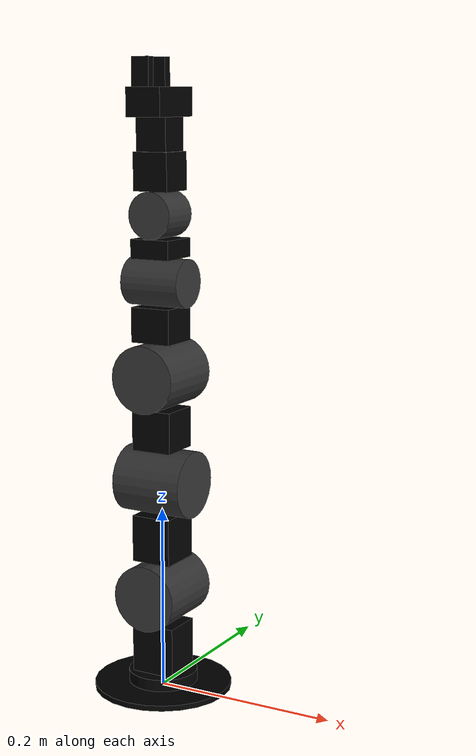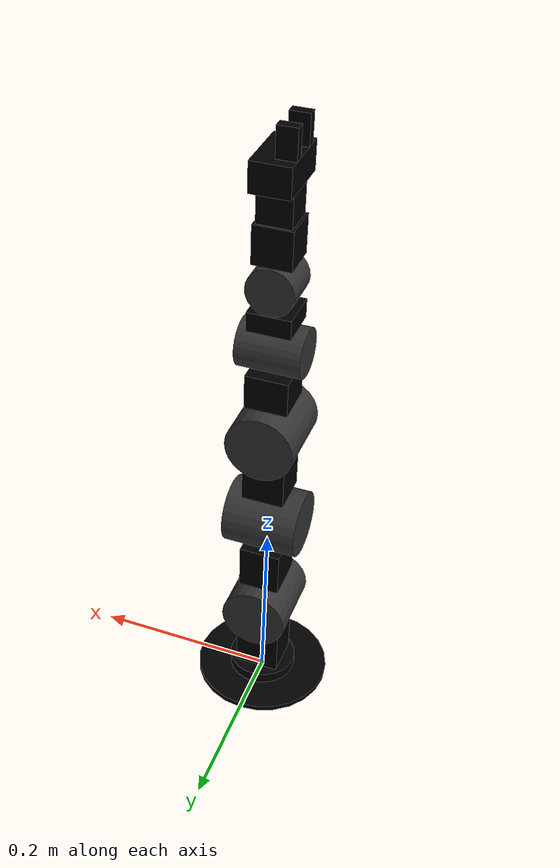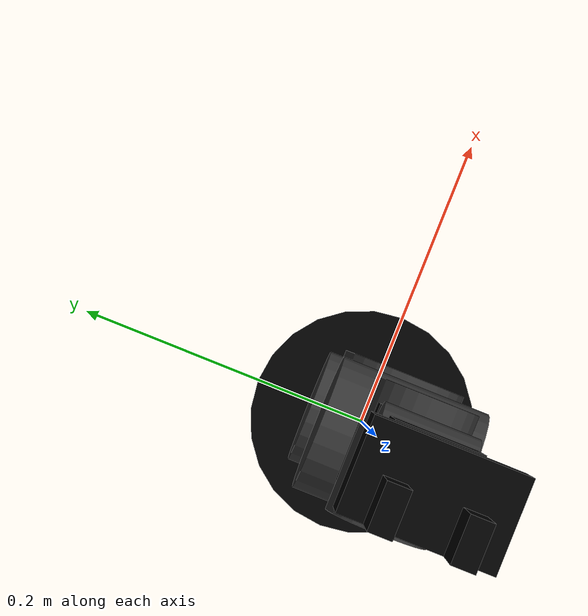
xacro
<?xml version="1.0"?>
<robot xmlns:xacro="http://ros.org/wiki/xacro" name="cyton_gamma_1500" >

  <xacro:include filename="$(find rose20_description)/cyton_gamma_1500/new/urdf/base/base.urdf.xacro" />
  <xacro:include filename="$(find rose20_description)/cyton_gamma_1500/new/urdf/arm/arm.urdf.xacro" />
  <xacro:include filename="$(find rose20_description)/cyton_gamma_1500/new/urdf/gripper/gripper.urdf.xacro" />

  <xacro:cyton_gamma_base/>
  <xacro:cyton_gamma_arm/>
  <xacro:cyton_gamma_gripper/>

</robot>

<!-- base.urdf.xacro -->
<robot xmlns:xacro="http://ros.org/wiki/xacro">

 <xacro:include filename="$(find rose20_description)/cyton_gamma_1500/new/urdf/properties/properties.urdf.xacro" />

  <xacro:macro name="cylinder_base" params="suffix radius length jointz parent">
    <link name="base_link_${suffix}">
      <visual>
        <geometry>
          <cylinder radius="${radius}" length="${length}" />
        </geometry>
        <origin xyz="0 0 0" rpy="0 0 0" />
        <material name="color_black">
         <color rgba="0 0 0 1"/>
        </material>
      </visual>
    </link>
   <joint name="base_joint_${suffix}" type="fixed" >
    <origin xyz="0 0 ${jointz}" rpy="0 0 0" />
    <parent link="${parent}" />
    <child link="base_link_${suffix}" />
   </joint>
  </xacro:macro>

  <!-- cyton_gamma_base: part 1 & 2 -->
 <xacro:macro name="cyton_gamma_base">
   <link name="world"/>

   <xacro:cylinder_base
                        suffix=    "1"
                        radius=    "${base_radius}"
                        length=    "${base_length}"
                        jointz=    "${base_length/2}"
                        parent=    "world" />

  <xacro:cylinder_base
                        suffix=     "2"
                        radius=     "${base_radius_2}"
                        length=     "${base_length_2}"
                        jointz=     "${base_length/2 + (base_length_2/2)}"
                        parent=     "base_link_1" />

 </xacro:macro>

</robot>

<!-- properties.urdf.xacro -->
<robot xmlns:xacro="http://ros.org/wiki/xacro">

  <property name="M_PI" value="3.1415926535897931"/>

  <!--Base-->
  <property name="base_length" value="0.006" />
  <property name="base_radius" value="0.075" />
  <property name="base_length_2" value="0.013" />
  <property name="base_radius_2" value="0.0375" />

  <!--Arm-->
  <!--Joint 1-->
  <property name="j1_l" value="0.0492" />
  <property name="j1_b" value="0.0445" />
  <property name="j1_h" value="0.0545" />
  <property name="j1_radius" value="0.036" />
  <property name="j1_length" value="0.08" />
  <property name="j1_lower_lim" value="-2.6" />
  <property name="j1_upper_lim" value="2.6" />
  <!--Joint 2-->
  <property name="j2_l" value="0.0445" />
  <property name="j2_b" value="0.0492" />
  <property name="j2_h" value="0.0505" />
  <property name="j2_radius" value="0.036" />
  <property name="j2_length" value="0.08" />
  <property name="j2_lower_lim" value="-1.65" />
  <property name="j2_upper_lim" value="1.65" />
  <!--Joint 3-->
  <property name="j3_l" value="0.0454" />
  <property name="j3_b" value="0.045" />
  <property name="j3_h" value="0.04385" />
  <property name="j3_radius" value="0.036" />
  <property name="j3_length" value="0.08" />
  <property name="j3_lower_lim" value="-1.60" />
  <property name="j3_upper_lim" value="1.60" />
  <!--Joint 4-->
  <property name="j4_l" value="0.045" />
  <property name="j4_b" value="0.045" />
  <property name="j4_h" value="0.037" />
  <property name="j4_radius" value="0.0255" />
  <property name="j4_length" value="0.067" />
  <property name="j4_lower_lim" value="-1.75" />
  <property name="j4_upper_lim" value="1.75" />
  <!--Joint 5-->
  <property name="j5_l" value="0.045" />
  <property name="j5_b" value="0.045" />
  <property name="j5_h" value="0.020" />
  <property name="j5_radius" value="0.0245" />
  <property name="j5_length" value="0.045" />
  <property name="j5_lower_lim" value="-1.90" />
  <property name="j5_upper_lim" value="1.90" />

  <!--Gripper-->
  <!--Part 1-->
  <property name="gr1_1" value="0.04" />
  <property name="gr1_2" value="0.035" />
  <property name="g1_lower_lim" value="-2.65" />
  <property name="g1_upper_lim" value="2.65" />
  <!--Part 2-->
  <property name="gr2_1_l" value="0.065" />
  <property name="gr2_1_b" value="0.04" />
  <property name="gr2_1_h" value="0.03" />
  <property name="gr2_2_l" value="0.01" />
  <property name="gr2_2_b" value="0.02" />
  <property name="gr2_2_h" value="0.03" />

</robot>

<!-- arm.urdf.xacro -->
<robot xmlns:xacro="http://ros.org/wiki/xacro">

 <xacro:include filename="$(find rose20_description)/cyton_gamma_1500/new/urdf/properties/properties.urdf.xacro" />

 <xacro:macro name="joint_arm" params="suffix radius length parent type_box type_cyl *size *limit_box *limit_cyl *origin_box *origin_cyl *axis_box *axis_cyl">
  <!--Part 1: box -->
  <joint name="arm_joint_box_${suffix}" type="${type_box}" >
    <parent link="${parent}" />
    <child link="arm_link_box_${suffix}" />
     <insert_block name="limit_box"/>
     <insert_block name="axis_box"/>
     <insert_block name="origin_box"/>

  </joint>
  <link name="arm_link_box_${suffix}">
    <visual>
      <material name="color_black">
        <color rgba="0 0 0 1"/>
      </material>
      <origin xyz="0 0 0" rpy="0 0 0" />
      <geometry>
         <insert_block name="size"/>
      </geometry>
    </visual>
  </link>
  <!--Part 2: cylinder -->
 <joint name="arm_joint_cyl_${suffix}" type="${type_cyl}" >
    <parent link="arm_link_box_${suffix}" />
    <child link="arm_link_cyl_${suffix}" />
    <insert_block name="limit_cyl"/>
    <insert_block name="axis_cyl"/>
    <insert_block name="origin_cyl"/>
  </joint>
  <link name="arm_link_cyl_${suffix}">
    <visual>
      <material name="grey">
        <color rgba=".2 .2 .2 1"/>
      </material>
      <origin xyz="0 0 0" rpy="0 0 0" />
      <geometry>
        <cylinder radius="${radius}" length="${length}" />
      </geometry>
    </visual>
  </link>
 </xacro:macro>

  <!-- cyton_gamma_arm: joint1 t/m joint5 -->
 <xacro:macro name="cyton_gamma_arm">
   <xacro:joint_arm
                  suffix=    "1"
                  radius=    "${j1_radius}"
                  length=    "${j1_length}"
                  parent=    "base_link_2"
                  type_box=  "revolute"
                  type_cyl=  "revolute">
                  <box size ="${j1_l} ${j1_b} ${j1_h}" />
                  <limit lower="-${M_PI}" upper="${M_PI}" effort="1000" velocity="1000"/>
                  <limit lower="${j1_lower_lim}" upper="${j1_upper_lim}" effort="1000" velocity="1000"/>
                  <origin xyz="0 0 ${(base_length_2/2) + (j1_h /2)}" rpy="0 0 0"/>
                  <origin xyz="0 0 ${(j1_h/2) + j1_radius}" rpy="${M_PI/2} 0 0"/>
                  <axis xyz="0 0 1" />
                  <axis xyz="0 0 1" />
  </xacro:joint_arm>

  <xacro:joint_arm
                  suffix=    "2"
                  radius=    "${j2_radius}"
                  length=    "${j2_length}"
                  parent=    "arm_link_cyl_1"
                  type_box=  "fixed"
                  type_cyl=  "revolute">
                  <box size ="${j2_l} ${j2_b} ${j2_h}" />
                  <limit lower="0" upper="0" effort="0" velocity="0"/>
                  <limit lower="${j2_lower_lim}" upper="${j2_upper_lim}" effort="1000" velocity="1000"/>
                  <origin xyz="0 ${j1_radius + (j2_h /2)} 0" rpy="-${M_PI/2} -${M_PI} 0"/>
                  <origin xyz="0 0 ${(j2_h/2) + j2_radius}" rpy="0 ${M_PI/2} 0"/>
                  <axis xyz="0 0 1" />
                  <axis xyz="0 0 1" />
  </xacro:joint_arm>

  <xacro:joint_arm
                  suffix=    "3"
                  radius=    "${j3_radius}"
                  length=    "${j3_length}"
                  parent=    "arm_link_cyl_2"
                  type_box=  "fixed"
                  type_cyl=  "revolute">
                  <box size ="${j3_l} ${j3_b} ${j3_h}" />
                  <limit lower="0" upper="0" effort="0" velocity="0"/>
                  <limit lower="${j3_lower_lim}" upper="${j3_upper_lim}" effort="1000" velocity="1000"/>
                  <origin xyz="-${j2_radius + (j3_h /2)} 0 0" rpy="0 -${M_PI/2} 0"/>
                  <origin xyz="0 0 ${(j3_h/2) + j3_radius}" rpy="${M_PI/2} 0 ${M_PI}"/>
                  <axis xyz="0 0 1" />
                  <axis xyz="0 0 1" />
  </xacro:joint_arm>

  <xacro:joint_arm
                  suffix=    "4"
                  radius=    "${j4_radius}"
                  length=    "${j4_length}"
                  parent=    "arm_link_cyl_3"
                  type_box=  "fixed"
                  type_cyl=  "revolute">
                  <box size ="${j4_l} ${j4_b} ${j4_h}" />
                  <limit lower="0" upper="0" effort="0" velocity="0"/>
                  <limit lower="${j4_lower_lim}" upper="${j4_upper_lim}" effort="1000" velocity="1000"/>
                  <origin xyz="0 ${j3_radius + (j4_h /2)} 0" rpy="-${M_PI/2} -${M_PI} 0"/>
                  <origin xyz="0 0 ${(j4_h/2) + j4_radius}" rpy="0 ${M_PI/2} 0"/>
                  <axis xyz="0 0 1" />
                  <axis xyz="0 0 1" />
  </xacro:joint_arm>

  <xacro:joint_arm
                  suffix=    "5"
                  radius=    "${j5_radius}"
                  length=    "${j5_length}"
                  parent=    "arm_link_cyl_4"
                  type_box=  "fixed"
                  type_cyl=  "revolute">
                  <box size ="${j5_l} ${j5_b} ${j5_h}" />
                  <limit lower="0" upper="0" effort="0" velocity="0"/>
                  <limit lower="${j5_lower_lim}" upper="${j5_upper_lim}" effort="1000" velocity="1000"/>
                  <origin xyz="-${j4_radius + (j5_h /2)} 0 0" rpy="0 -${M_PI/2} 0"/>
                  <origin xyz="0 0 ${(j5_h/2) + j5_radius}" rpy="${M_PI/2} 0 ${M_PI}"/>
                  <axis xyz="0 0 1" />
                  <axis xyz="0 0 1" />
  </xacro:joint_arm>

 </xacro:macro>

</robot>

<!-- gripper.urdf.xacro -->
<robot xmlns:xacro="http://ros.org/wiki/xacro">

 <xacro:include filename="$(find rose20_description)/cyton_gamma_1500/new/urdf/properties/properties.urdf.xacro" />

  <xacro:macro name="part_gripper" params="suffix parent type *origin *limit *size">
   <joint name="gripper_joint_${suffix}" type="${type}" >
    <parent link="${parent}" />
    <child link="gripper_link_${suffix}" />
     <insert_block name="limit"/>
    <axis xyz="0 0 1"/>
     <insert_block name="origin"/>
  </joint>
  <link name="gripper_link_${suffix}">
    <visual>
      <material name="color_black">
        <color rgba="0 0 0 1"/>
      </material>
      <origin xyz="0 0 0" rpy="0 0 0" />
      <geometry>
         <insert_block name="size"/>
      </geometry>
    </visual>
  </link>
  </xacro:macro>

  <!-- cyton_gamma_gripper: part 1 & 2 -->
  <xacro:macro name="cyton_gamma_gripper">

  <!-- Part 1 -->
  <xacro:part_gripper
                  suffix=     "1"
                  parent=     "arm_link_cyl_5"
                  type =      "revolute">
                  <origin xyz="0 ${j5_radius + (gr1_1 /2)} 0" rpy="-${M_PI/2} ${M_PI/2} 0"/>
 		              <limit lower="${g1_lower_lim}" upper="${g1_upper_lim}" effort="1000" velocity="1000"/>
                  <box size ="${gr1_1} ${gr1_1} ${gr1_1}" />
  </xacro:part_gripper>
  <xacro:part_gripper
                  suffix=     "2"
                  parent=     "gripper_link_1"
                  type =      "fixed">
                  <origin xyz="0 0 ${(gr1_1/2) + (gr1_2/2)}" rpy="0 0 0"/>
 		              <limit lower="0" upper="0" effort="0" velocity="0"/>
                  <box size ="${gr1_2} ${gr1_2} ${gr1_2}" />
  </xacro:part_gripper>
  <!-- Part 2 -->
  <xacro:part_gripper
                  suffix=     "3"
                  parent=     "gripper_link_2"
                  type =      "fixed">
                  <origin xyz="0 0 ${(gr1_2/2) + (gr2_1_h/2)}" rpy="0 0 0"/>
 		              <limit lower="0" upper="0" effort="0" velocity="0"/>
                  <box size ="${gr2_1_l} ${gr2_1_b} ${gr2_1_h}" />
  </xacro:part_gripper>

  <xacro:part_gripper
                  suffix=     "4"
                  parent=     "gripper_link_3"
                  type =      "fixed">
                  <origin xyz="${gr2_1_l /4} ${(gr2_1_b /2) - (gr2_2_b /2)} ${(gr2_1_h/2) + (gr2_2_h/2)}" rpy="0 0 0"/>
 		              <limit lower="0" upper="0" effort="0" velocity="0"/>
                  <box size ="${gr2_2_l} ${gr2_2_b} ${gr2_2_h}" />
  </xacro:part_gripper>

  <xacro:part_gripper
                  suffix=     "5"
                  parent=     "gripper_link_3"
                  type =      "fixed">
                  <origin xyz="-${gr2_1_l /4} ${(gr2_1_b /2) - (gr2_2_b /2)} ${(gr2_1_h/2) + (gr2_2_h/2)}" rpy="0 0 0"/>
 		              <limit lower="0" upper="0" effort="0" velocity="0"/>
                  <box size ="${gr2_2_l} ${gr2_2_b} ${gr2_2_h}" />
  </xacro:part_gripper>

  </xacro:macro>

</robot>

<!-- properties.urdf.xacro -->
<robot xmlns:xacro="http://ros.org/wiki/xacro">

  <property name="M_PI" value="3.1415926535897931"/>

  <!--Base-->
  <property name="base_length" value="0.006" />
  <property name="base_radius" value="0.075" />
  <property name="base_length_2" value="0.013" />
  <property name="base_radius_2" value="0.0375" />

  <!--Arm-->
  <!--Joint 1-->
  <property name="j1_l" value="0.0492" />
  <property name="j1_b" value="0.0445" />
  <property name="j1_h" value="0.0545" />
  <property name="j1_radius" value="0.036" />
  <property name="j1_length" value="0.08" />
  <!--Joint 2-->
  <property name="j2_l" value="0.0445" />
  <property name="j2_b" value="0.0492" />
  <property name="j2_h" value="0.0505" />
  <property name="j2_radius" value="0.036" />
  <property name="j2_length" value="0.08" />
  <!--Joint 3-->
  <property name="j3_l" value="0.0454" />
  <property name="j3_b" value="0.045" />
  <property name="j3_h" value="0.04385" />
  <property name="j3_radius" value="0.036" />
  <property name="j3_length" value="0.08" />
  <!--Joint 4-->
  <property name="j4_l" value="0.045" />
  <property name="j4_b" value="0.045" />
  <property name="j4_h" value="0.037" />
  <property name="j4_radius" value="0.0255" />
  <property name="j4_length" value="0.067" />
  <!--Joint 5-->
  <property name="j5_l" value="0.045" />
  <property name="j5_b" value="0.045" />
  <property name="j5_h" value="0.020" />
  <property name="j5_radius" value="0.0245" />
  <property name="j5_length" value="0.045" />

  <!--Gripper-->
  <!--Part 1-->
  <property name="gr1_1" value="0.04" />
  <property name="gr1_2" value="0.035" />
  <!--Part 2-->
  <property name="gr2_1_l" value="0.065" />
  <property name="gr2_1_b" value="0.04" />
  <property name="gr2_1_h" value="0.03" />
  <property name="gr2_2_l" value="0.01" />
  <property name="gr2_2_b" value="0.02" />
  <property name="gr2_2_h" value="0.03" />

</robot>
